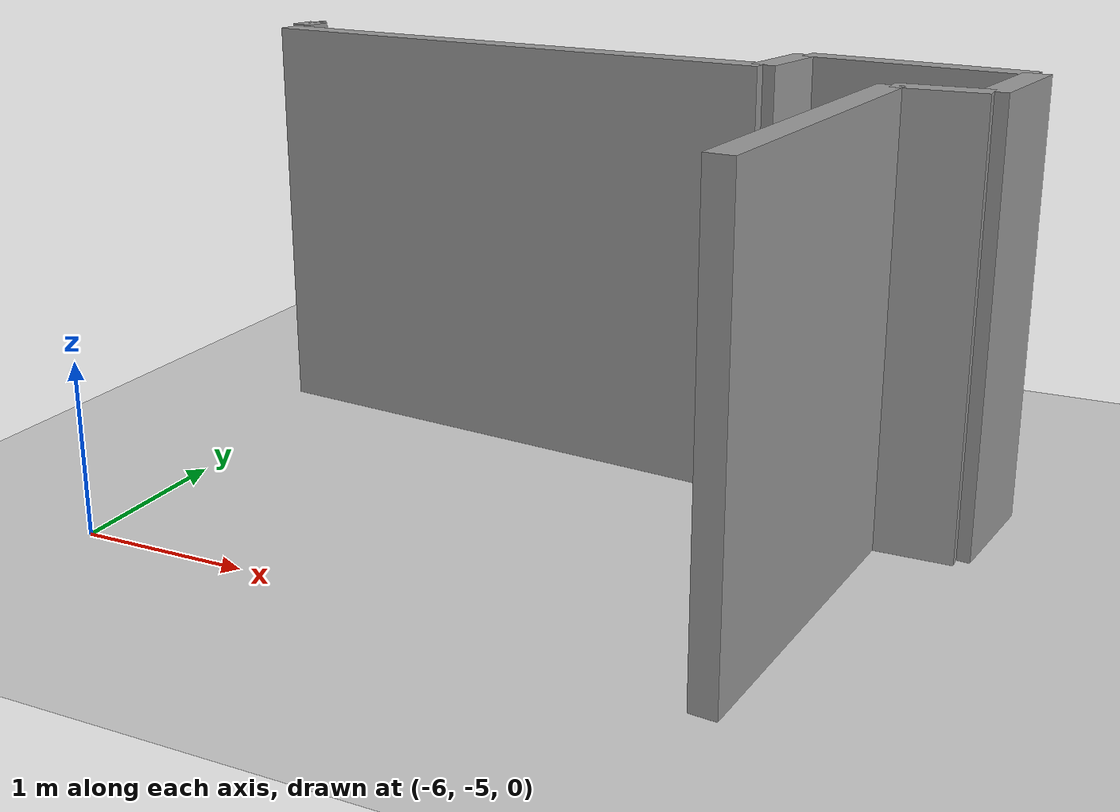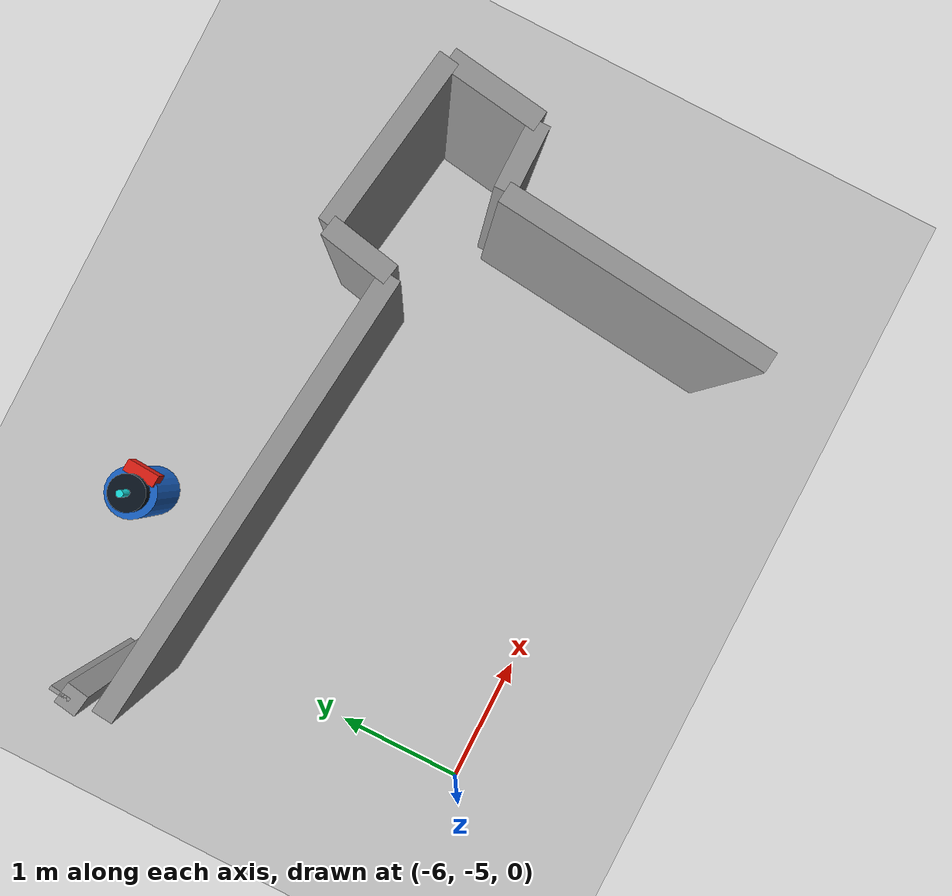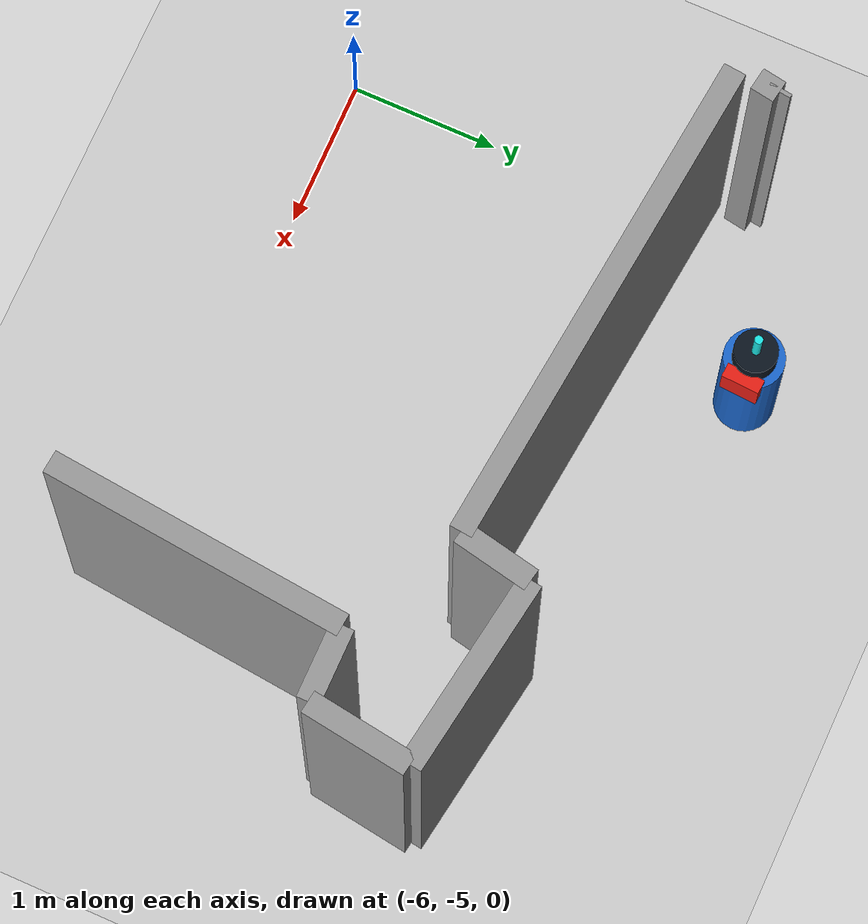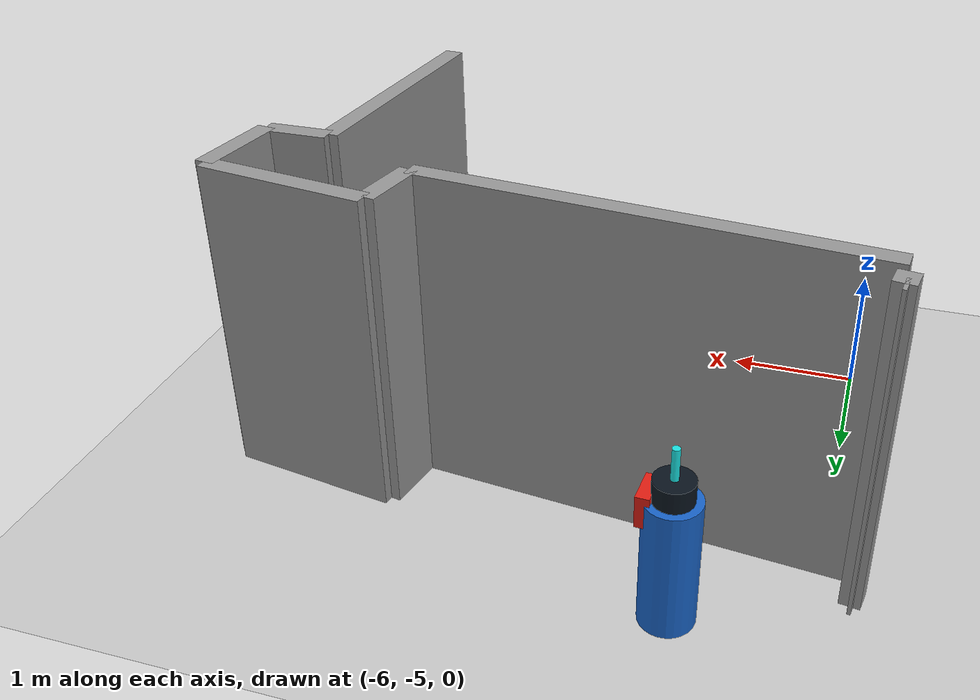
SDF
<sdf version="1.7">
 <world name="default">
  <plugin name="socnav_plugin" filename="libSocNavPlugin.so">
   <robot_name>robot</robot_name>
   <trajectory_file>/home/hunav_gz_classic_ws/SocNav3_trajectories/src3/000001078.json</trajectory_file>
   <human_slots>2</human_slots>
  </plugin>
  <light name="sun" type="directional">
   <pose>0 0 10 0 -0 0</pose>
   <diffuse>0.8 0.8 0.8 1</diffuse>
   <specular>0.2 0.2 0.2 1</specular>
   <attenuation>
    <range>1000</range>
    <constant>0.9</constant>
    <linear>0.01</linear>
    <quadratic>0.001</quadratic>
   </attenuation>
   <direction>-0.5 0.1 -0.9</direction>
   <spot><inner_angle>0</inner_angle><outer_angle>0</outer_angle><falloff>0</falloff></spot>
  </light>
  <model name="ground_plane">
   <static>1</static>
   <link name="link">
    <collision name="collision">
     <geometry><plane><normal>0 0 1</normal><size>100 100</size></plane></geometry>
     <surface><friction><ode><mu>100</mu><mu2>50</mu2></ode></friction></surface>
    </collision>
    <visual name="visual">
     <cast_shadows>0</cast_shadows>
     <geometry><plane><normal>0 0 1</normal><size>100 100</size></plane></geometry>
     <material>
      <script><uri>file://media/materials/scripts/kitchen.material</uri><name>Kitchen/CounterTop_H</name></script>
     </material>
    </visual>
   </link>
  </model>
  <gravity>0 0 -9.8</gravity>
  <magnetic_field>6e-06 2.3e-05 -4.2e-05</magnetic_field>
  <atmosphere type="adiabatic"/>
  <physics type="ode">
   <max_step_size>0.001</max_step_size>
   <real_time_factor>1</real_time_factor>
   <real_time_update_rate>1000</real_time_update_rate>
  </physics>
  <scene><ambient>0.4 0.4 0.4 1</ambient><background>0.7 0.7 0.7 1</background><shadows>1</shadows></scene>
  <audio><device>default</device></audio>
  <spherical_coordinates>
   <surface_model>EARTH_WGS84</surface_model>
   <latitude_deg>0</latitude_deg>
   <longitude_deg>0</longitude_deg>
   <elevation>0</elevation>
   <heading_deg>0</heading_deg>
  </spherical_coordinates>
  <model name="robot">
   <pose>-5.060196767997052 -1.8030418406381201 0.5 0 0 -0.05728390806620171</pose>
   <link name="link">
    <collision name="collision">
     <geometry><cylinder><radius>0.2</radius><length>1.0</length></cylinder></geometry>
    </collision>
    <visual name="visual">
     <geometry><cylinder><radius>0.2</radius><length>1.0</length></cylinder></geometry>
     <material><ambient>0.1 0.4 0.8 1</ambient><diffuse>0.1 0.4 0.8 1</diffuse></material>
    </visual>
    <visual name="robot_top">
     <pose>0 0 0.58 0 0 0</pose>
     <geometry><cylinder><radius>0.144</radius><length>0.16</length></cylinder></geometry>
     <material><ambient>0.04 0.08 0.12 1</ambient><diffuse>0.04 0.08 0.12 1</diffuse></material>
    </visual>
    <visual name="robot_front">
     <pose>0.168 0 0.44 0 0 0</pose>
     <geometry><box><size>0.096 0.256 0.24</size></box></geometry>
     <material><ambient>0.9 0.12 0.08 1</ambient><diffuse>0.9 0.12 0.08 1</diffuse></material>
    </visual>
    <visual name="robot_sensor">
     <pose>0 0 0.78 0 0 0</pose>
     <geometry><cylinder><radius>0.028000000000000004</radius><length>0.24</length></cylinder></geometry>
     <material><ambient>0.1 0.9 0.9 1</ambient><diffuse>0.1 0.9 0.9 1</diffuse></material>
    </visual>
   </link>
  </model>
  <model name="simple_world_test">
   <link name="Wall_0">
    <collision name="Wall_0_Collision">
     <geometry><box><size>0.026487449658033974 0.15 2.5</size></box></geometry>
     <pose>0 0 1.25 0 -0 0</pose>
    </collision>
    <visual name="Wall_0_Visual">
     <pose>0 0 1.25 0 -0 0</pose>
     <geometry><box><size>0.026487449658033974 0.15 2.5</size></box></geometry>
     <material>
      <script><uri>file://media/materials/scripts/gazebo.material</uri><name>Gazebo/Grey</name></script>
      <ambient>1 1 1 1</ambient>
     </material>
     <meta><layer>0</layer></meta>
    </visual>
    <pose>-6.231275834842074 -2.241166921544692 0 0 -0 -0.12435499454676975</pose>
   </link>
   <link name="Wall_1">
    <collision name="Wall_1_Collision">
     <geometry><box><size>0.15987270199795137 0.15 2.5</size></box></geometry>
     <pose>0 0 1.25 0 -0 0</pose>
    </collision>
    <visual name="Wall_1_Visual">
     <pose>0 0 1.25 0 -0 0</pose>
     <geometry><box><size>0.15987270199795137 0.15 2.5</size></box></geometry>
     <material>
      <script><uri>file://media/materials/scripts/gazebo.material</uri><name>Gazebo/Grey</name></script>
      <ambient>1 1 1 1</ambient>
     </material>
     <meta><layer>0</layer></meta>
    </visual>
    <pose>-6.231275834842074 -2.3216583343575348 0 0 -0 -1.7359450042095217</pose>
   </link>
   <link name="Wall_2">
    <collision name="Wall_2_Collision">
     <geometry><box><size>3.3443877774538358 0.15 2.5</size></box></geometry>
     <pose>0 0 1.25 0 -0 0</pose>
    </collision>
    <visual name="Wall_2_Visual">
     <pose>0 0 1.25 0 -0 0</pose>
     <geometry><box><size>3.3443877774538358 0.15 2.5</size></box></geometry>
     <material>
      <script><uri>file://media/materials/scripts/gazebo.material</uri><name>Gazebo/Grey</name></script>
      <ambient>1 1 1 1</ambient>
     </material>
     <meta><layer>0</layer></meta>
    </visual>
    <pose>-4.5812758348420735 -2.7190485558855206 0 0 -0 -0.1040999381095993</pose>
   </link>
   <link name="Wall_3">
    <collision name="Wall_3_Collision">
     <geometry><box><size>0.5099019513592785 0.15 2.5</size></box></geometry>
     <pose>0 0 1.25 0 -0 0</pose>
    </collision>
    <visual name="Wall_3_Visual">
     <pose>0 0 1.25 0 -0 0</pose>
     <geometry><box><size>0.5099019513592785 0.15 2.5</size></box></geometry>
     <material>
      <script><uri>file://media/materials/scripts/gazebo.material</uri><name>Gazebo/Grey</name></script>
      <ambient>1 1 1 1</ambient>
     </material>
     <meta><layer>0</layer></meta>
    </visual>
    <pose>-2.8681343796889562 -2.6428096034388315 0 0 -0 1.3734007669450157</pose>
   </link>
   <link name="Wall_4">
    <collision name="Wall_4_Collision">
     <geometry><box><size>1.3152946437965902 0.15 2.5</size></box></geometry>
     <pose>0 0 1.25 0 -0 0</pose>
    </collision>
    <visual name="Wall_4_Visual">
     <pose>0 0 1.25 0 -0 0</pose>
     <geometry><box><size>1.3152946437965902 0.15 2.5</size></box></geometry>
     <material>
      <script><uri>file://media/materials/scripts/gazebo.material</uri><name>Gazebo/Grey</name></script>
      <ambient>1 1 1 1</ambient>
     </material>
     <meta><layer>0</layer></meta>
    </visual>
    <pose>-2.1681343796889565 -2.4928096034388316 0 0 -0 -0.152649328395265</pose>
   </link>
   <link name="Wall_5">
    <collision name="Wall_5_Collision">
     <geometry><box><size>0.7071067811865477 0.15 2.5</size></box></geometry>
     <pose>0 0 1.25 0 -0 0</pose>
    </collision>
    <visual name="Wall_5_Visual">
     <pose>0 0 1.25 0 -0 0</pose>
     <geometry><box><size>0.7071067811865477 0.15 2.5</size></box></geometry>
     <material>
      <script><uri>file://media/materials/scripts/gazebo.material</uri><name>Gazebo/Grey</name></script>
      <ambient>1 1 1 1</ambient>
     </material>
     <meta><layer>0</layer></meta>
    </visual>
    <pose>-1.5681343796889564 -2.9428096034388314 0 0 -0 -1.71269338139906</pose>
   </link>
   <link name="Wall_6">
    <collision name="Wall_6_Collision">
     <geometry><box><size>0.5 0.15 2.5</size></box></geometry>
     <pose>0 0 1.25 0 -0 0</pose>
    </collision>
    <visual name="Wall_6_Visual">
     <pose>0 0 1.25 0 -0 0</pose>
     <geometry><box><size>0.5 0.15 2.5</size></box></geometry>
     <material>
      <script><uri>file://media/materials/scripts/gazebo.material</uri><name>Gazebo/Grey</name></script>
      <ambient>1 1 1 1</ambient>
     </material>
     <meta><layer>0</layer></meta>
    </visual>
    <pose>-1.8681343796889562 -3.2928096034388314 0 0 -0 3.141592653589793</pose>
   </link>
   <link name="Wall_7">
    <collision name="Wall_7_Collision">
     <geometry><box><size>2.009975124224178 0.15 2.5</size></box></geometry>
     <pose>0 0 1.25 0 -0 0</pose>
    </collision>
    <visual name="Wall_7_Visual">
     <pose>0 0 1.25 0 -0 0</pose>
     <geometry><box><size>2.009975124224178 0.15 2.5</size></box></geometry>
     <material>
      <script><uri>file://media/materials/scripts/gazebo.material</uri><name>Gazebo/Grey</name></script>
      <ambient>1 1 1 1</ambient>
     </material>
     <meta><layer>0</layer></meta>
    </visual>
    <pose>-2.2181343796889563 -4.2928096034388314 0 0 -0 -1.6704649792860586</pose>
   </link>
   <static>1</static>
  </model>
 </world>
</sdf>
